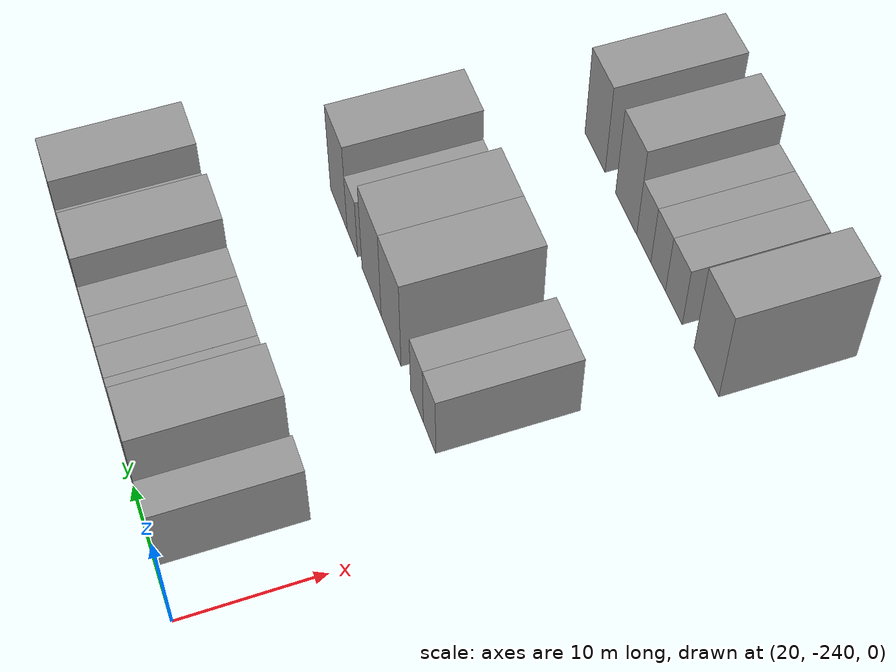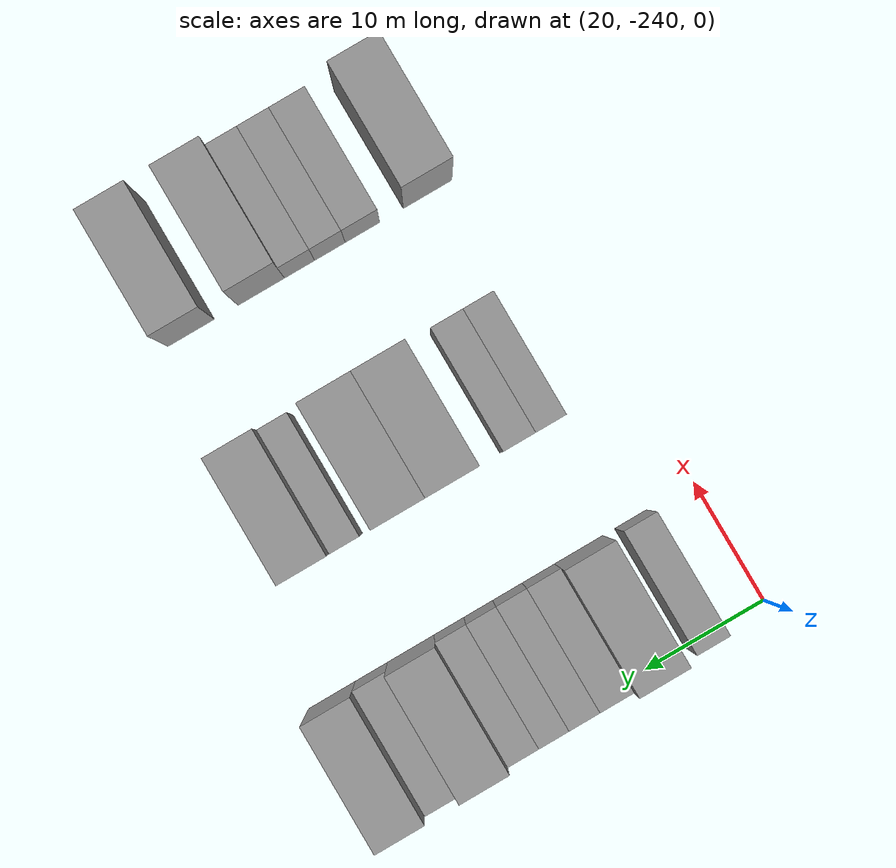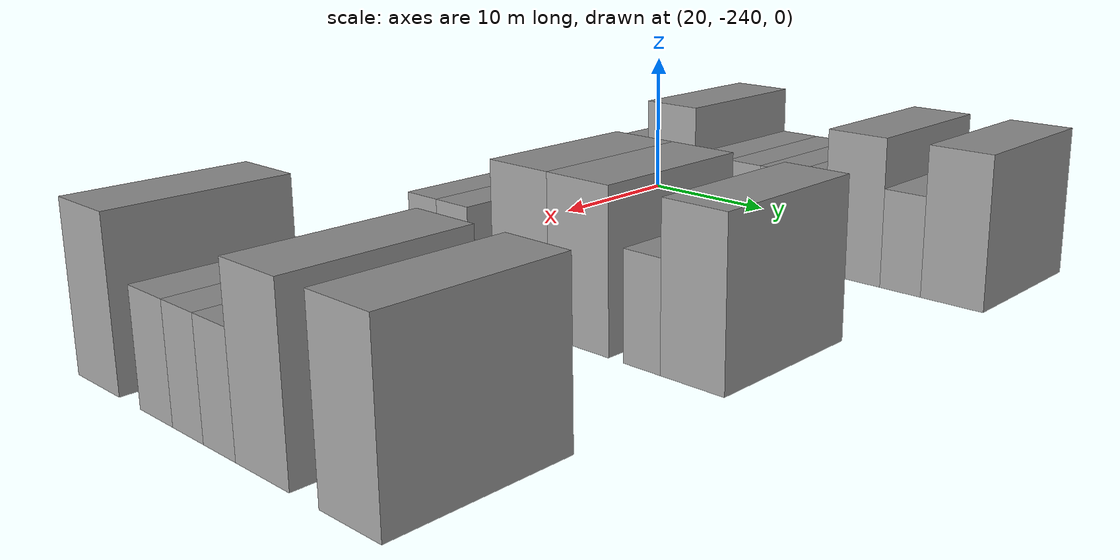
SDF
<sdf version="1.6">
 <world name="default">
  <model name="building_1">
   <static>1</static>
   <pose>25.0000 -234.6481 0 0.000000 0.000000 0.000000</pose>
   <link name="link">
    <pose>0 0 3.00 0 0 0</pose>
    <collision name="collision"><geometry><box><size>10.0000 2.7038 6.0000</size></box></geometry></collision>
    <visual name="visual">
     <cast_shadows>0</cast_shadows>
     <geometry><box><size>10.0000 2.7038 6.0000</size></box></geometry>
     <material>
      <script>
       <uri>model://grey_wall/materials/scripts</uri>
       <uri>model://grey_wall/materials/textures</uri>
       <name>vrc/grey_wall</name>
      </script>
     </material>
    </visual>
   </link>
  </model>
  <model name="building_2">
   <static>1</static>
   <pose>25.0000 -230.2623 0 0.000000 0.000000 0.000000</pose>
   <link name="link">
    <pose>0 0 4.50 0 0 0</pose>
    <collision name="collision"><geometry><box><size>10.0000 4.0678 9.0000</size></box></geometry></collision>
    <visual name="visual">
     <cast_shadows>0</cast_shadows>
     <geometry><box><size>10.0000 4.0678 9.0000</size></box></geometry>
     <material>
      <script>
       <uri>model://grey_wall/materials/scripts</uri>
       <uri>model://grey_wall/materials/textures</uri>
       <name>vrc/grey_wall</name>
      </script>
     </material>
    </visual>
   </link>
  </model>
  <model name="building_3">
   <static>1</static>
   <pose>25.0000 -226.8506 0 0.000000 0.000000 0.000000</pose>
   <link name="link">
    <pose>0 0 3.00 0 0 0</pose>
    <collision name="collision"><geometry><box><size>10.0000 2.7557 6.0000</size></box></geometry></collision>
    <visual name="visual">
     <cast_shadows>0</cast_shadows>
     <geometry><box><size>10.0000 2.7557 6.0000</size></box></geometry>
     <material>
      <script>
       <uri>model://grey_wall/materials/scripts</uri>
       <uri>model://grey_wall/materials/textures</uri>
       <name>vrc/grey_wall</name>
      </script>
     </material>
    </visual>
   </link>
  </model>
  <model name="building_4">
   <static>1</static>
   <pose>25.0000 -224.2279 0 0.000000 0.000000 0.000000</pose>
   <link name="link">
    <pose>0 0 3.00 0 0 0</pose>
    <collision name="collision"><geometry><box><size>10.0000 2.4896 6.0000</size></box></geometry></collision>
    <visual name="visual">
     <cast_shadows>0</cast_shadows>
     <geometry><box><size>10.0000 2.4896 6.0000</size></box></geometry>
     <material>
      <script>
       <uri>model://grey_wall/materials/scripts</uri>
       <uri>model://grey_wall/materials/textures</uri>
       <name>vrc/grey_wall</name>
      </script>
     </material>
    </visual>
   </link>
  </model>
  <model name="building_5">
   <static>1</static>
   <pose>25.0000 -221.7675 0 0.000000 0.000000 0.000000</pose>
   <link name="link">
    <pose>0 0 3.00 0 0 0</pose>
    <collision name="collision"><geometry><box><size>10.0000 2.4312 6.0000</size></box></geometry></collision>
    <visual name="visual">
     <cast_shadows>0</cast_shadows>
     <geometry><box><size>10.0000 2.4312 6.0000</size></box></geometry>
     <material>
      <script>
       <uri>model://grey_wall/materials/scripts</uri>
       <uri>model://grey_wall/materials/textures</uri>
       <name>vrc/grey_wall</name>
      </script>
     </material>
    </visual>
   </link>
  </model>
  <model name="building_6">
   <static>1</static>
   <pose>25.0000 -219.2975 0 0.000000 0.000000 0.000000</pose>
   <link name="link">
    <pose>0 0 3.00 0 0 0</pose>
    <collision name="collision"><geometry><box><size>10.0000 2.5089 6.0000</size></box></geometry></collision>
    <visual name="visual">
     <cast_shadows>0</cast_shadows>
     <geometry><box><size>10.0000 2.5089 6.0000</size></box></geometry>
     <material>
      <script>
       <uri>model://grey_wall/materials/scripts</uri>
       <uri>model://grey_wall/materials/textures</uri>
       <name>vrc/grey_wall</name>
      </script>
     </material>
    </visual>
   </link>
  </model>
  <model name="building_7">
   <static>1</static>
   <pose>25.0000 -216.0618 0 0.000000 0.000000 0.000000</pose>
   <link name="link">
    <pose>0 0 4.50 0 0 0</pose>
    <collision name="collision"><geometry><box><size>10.0000 3.9624 9.0000</size></box></geometry></collision>
    <visual name="visual">
     <cast_shadows>0</cast_shadows>
     <geometry><box><size>10.0000 3.9624 9.0000</size></box></geometry>
     <material>
      <script>
       <uri>model://grey_wall/materials/scripts</uri>
       <uri>model://grey_wall/materials/textures</uri>
       <name>vrc/grey_wall</name>
      </script>
     </material>
    </visual>
   </link>
  </model>
  <model name="building_8">
   <static>1</static>
   <pose>25.0000 -212.7326 0 0.000000 0.000000 0.000000</pose>
   <link name="link">
    <pose>0 0 3.00 0 0 0</pose>
    <collision name="collision"><geometry><box><size>10.0000 2.6959 6.0000</size></box></geometry></collision>
    <visual name="visual">
     <cast_shadows>0</cast_shadows>
     <geometry><box><size>10.0000 2.6959 6.0000</size></box></geometry>
     <material>
      <script>
       <uri>model://grey_wall/materials/scripts</uri>
       <uri>model://grey_wall/materials/textures</uri>
       <name>vrc/grey_wall</name>
      </script>
     </material>
    </visual>
   </link>
  </model>
  <model name="building_9">
   <static>1</static>
   <pose>25.0000 -209.4204 0 0.000000 0.000000 0.000000</pose>
   <link name="link">
    <pose>0 0 4.50 0 0 0</pose>
    <collision name="collision"><geometry><box><size>10.0000 3.9286 9.0000</size></box></geometry></collision>
    <visual name="visual">
     <cast_shadows>0</cast_shadows>
     <geometry><box><size>10.0000 3.9286 9.0000</size></box></geometry>
     <material>
      <script>
       <uri>model://grey_wall/materials/scripts</uri>
       <uri>model://grey_wall/materials/textures</uri>
       <name>vrc/grey_wall</name>
      </script>
     </material>
    </visual>
   </link>
  </model>
  <model name="building_125">
   <static>1</static>
   <pose>44.0000 -232.7569 0 0.000000 0.000000 0.000000</pose>
   <link name="link">
    <pose>0 0 3.00 0 0 0</pose>
    <collision name="collision"><geometry><box><size>10.0000 2.4863 6.0000</size></box></geometry></collision>
    <visual name="visual">
     <cast_shadows>0</cast_shadows>
     <geometry><box><size>10.0000 2.4863 6.0000</size></box></geometry>
     <material>
      <script>
       <uri>model://grey_wall/materials/scripts</uri>
       <uri>model://grey_wall/materials/textures</uri>
       <name>vrc/grey_wall</name>
      </script>
     </material>
    </visual>
   </link>
  </model>
  <model name="building_126">
   <static>1</static>
   <pose>44.0000 -230.1991 0 0.000000 0.000000 0.000000</pose>
   <link name="link">
    <pose>0 0 3.00 0 0 0</pose>
    <collision name="collision"><geometry><box><size>10.0000 2.6292 6.0000</size></box></geometry></collision>
    <visual name="visual">
     <cast_shadows>0</cast_shadows>
     <geometry><box><size>10.0000 2.6292 6.0000</size></box></geometry>
     <material>
      <script>
       <uri>model://grey_wall/materials/scripts</uri>
       <uri>model://grey_wall/materials/textures</uri>
       <name>vrc/grey_wall</name>
      </script>
     </material>
    </visual>
   </link>
  </model>
  <model name="building_127">
   <static>1</static>
   <pose>44.0000 -224.7389 0 0.000000 0.000000 0.000000</pose>
   <link name="link">
    <pose>0 0 4.50 0 0 0</pose>
    <collision name="collision"><geometry><box><size>10.0000 4.2913 9.0000</size></box></geometry></collision>
    <visual name="visual">
     <cast_shadows>0</cast_shadows>
     <geometry><box><size>10.0000 4.2913 9.0000</size></box></geometry>
     <material>
      <script>
       <uri>model://grey_wall/materials/scripts</uri>
       <uri>model://grey_wall/materials/textures</uri>
       <name>vrc/grey_wall</name>
      </script>
     </material>
    </visual>
   </link>
  </model>
  <model name="building_128">
   <static>1</static>
   <pose>44.0000 -220.4427 0 0.000000 0.000000 0.000000</pose>
   <link name="link">
    <pose>0 0 4.50 0 0 0</pose>
    <collision name="collision"><geometry><box><size>10.0000 4.3011 9.0000</size></box></geometry></collision>
    <visual name="visual">
     <cast_shadows>0</cast_shadows>
     <geometry><box><size>10.0000 4.3011 9.0000</size></box></geometry>
     <material>
      <script>
       <uri>model://grey_wall/materials/scripts</uri>
       <uri>model://grey_wall/materials/textures</uri>
       <name>vrc/grey_wall</name>
      </script>
     </material>
    </visual>
   </link>
  </model>
  <model name="building_129">
   <static>1</static>
   <pose>44.0000 -216.0761 0 0.000000 0.000000 0.000000</pose>
   <link name="link">
    <pose>0 0 3.00 0 0 0</pose>
    <collision name="collision"><geometry><box><size>10.0000 2.4320 6.0000</size></box></geometry></collision>
    <visual name="visual">
     <cast_shadows>0</cast_shadows>
     <geometry><box><size>10.0000 2.4320 6.0000</size></box></geometry>
     <material>
      <script>
       <uri>model://grey_wall/materials/scripts</uri>
       <uri>model://grey_wall/materials/textures</uri>
       <name>vrc/grey_wall</name>
      </script>
     </material>
    </visual>
   </link>
  </model>
  <model name="building_130">
   <static>1</static>
   <pose>44.0000 -212.8763 0 0.000000 0.000000 0.000000</pose>
   <link name="link">
    <pose>0 0 4.50 0 0 0</pose>
    <collision name="collision"><geometry><box><size>10.0000 3.9676 9.0000</size></box></geometry></collision>
    <visual name="visual">
     <cast_shadows>0</cast_shadows>
     <geometry><box><size>10.0000 3.9676 9.0000</size></box></geometry>
     <material>
      <script>
       <uri>model://grey_wall/materials/scripts</uri>
       <uri>model://grey_wall/materials/textures</uri>
       <name>vrc/grey_wall</name>
      </script>
     </material>
    </visual>
   </link>
  </model>
  <model name="building_233">
   <static>1</static>
   <pose>63.0000 -233.9388 0 0.000000 0.000000 0.000000</pose>
   <link name="link">
    <pose>0 0 4.50 0 0 0</pose>
    <collision name="collision"><geometry><box><size>10.0000 4.1223 9.0000</size></box></geometry></collision>
    <visual name="visual">
     <cast_shadows>0</cast_shadows>
     <geometry><box><size>10.0000 4.1223 9.0000</size></box></geometry>
     <material>
      <script>
       <uri>model://grey_wall/materials/scripts</uri>
       <uri>model://grey_wall/materials/textures</uri>
       <name>vrc/grey_wall</name>
      </script>
     </material>
    </visual>
   </link>
  </model>
  <model name="building_234">
   <static>1</static>
   <pose>63.0000 -228.4174 0 0.000000 0.000000 0.000000</pose>
   <link name="link">
    <pose>0 0 3.00 0 0 0</pose>
    <collision name="collision"><geometry><box><size>10.0000 2.9205 6.0000</size></box></geometry></collision>
    <visual name="visual">
     <cast_shadows>0</cast_shadows>
     <geometry><box><size>10.0000 2.9205 6.0000</size></box></geometry>
     <material>
      <script>
       <uri>model://grey_wall/materials/scripts</uri>
       <uri>model://grey_wall/materials/textures</uri>
       <name>vrc/grey_wall</name>
      </script>
     </material>
    </visual>
   </link>
  </model>
  <model name="building_235">
   <static>1</static>
   <pose>63.0000 -225.6605 0 0.000000 0.000000 0.000000</pose>
   <link name="link">
    <pose>0 0 3.00 0 0 0</pose>
    <collision name="collision"><geometry><box><size>10.0000 2.5933 6.0000</size></box></geometry></collision>
    <visual name="visual">
     <cast_shadows>0</cast_shadows>
     <geometry><box><size>10.0000 2.5933 6.0000</size></box></geometry>
     <material>
      <script>
       <uri>model://grey_wall/materials/scripts</uri>
       <uri>model://grey_wall/materials/textures</uri>
       <name>vrc/grey_wall</name>
      </script>
     </material>
    </visual>
   </link>
  </model>
  <model name="building_236">
   <static>1</static>
   <pose>63.0000 -223.0857 0 0.000000 0.000000 0.000000</pose>
   <link name="link">
    <pose>0 0 3.00 0 0 0</pose>
    <collision name="collision"><geometry><box><size>10.0000 2.5563 6.0000</size></box></geometry></collision>
    <visual name="visual">
     <cast_shadows>0</cast_shadows>
     <geometry><box><size>10.0000 2.5563 6.0000</size></box></geometry>
     <material>
      <script>
       <uri>model://grey_wall/materials/scripts</uri>
       <uri>model://grey_wall/materials/textures</uri>
       <name>vrc/grey_wall</name>
      </script>
     </material>
    </visual>
   </link>
  </model>
  <model name="building_237">
   <static>1</static>
   <pose>63.0000 -219.8384 0 0.000000 0.000000 0.000000</pose>
   <link name="link">
    <pose>0 0 4.50 0 0 0</pose>
    <collision name="collision"><geometry><box><size>10.0000 3.9382 9.0000</size></box></geometry></collision>
    <visual name="visual">
     <cast_shadows>0</cast_shadows>
     <geometry><box><size>10.0000 3.9382 9.0000</size></box></geometry>
     <material>
      <script>
       <uri>model://grey_wall/materials/scripts</uri>
       <uri>model://grey_wall/materials/textures</uri>
       <name>vrc/grey_wall</name>
      </script>
     </material>
    </visual>
   </link>
  </model>
  <model name="building_238">
   <static>1</static>
   <pose>63.0000 -213.8990 0 0.000000 0.000000 0.000000</pose>
   <link name="link">
    <pose>0 0 4.50 0 0 0</pose>
    <collision name="collision"><geometry><box><size>10.0000 3.9406 9.0000</size></box></geometry></collision>
    <visual name="visual">
     <cast_shadows>0</cast_shadows>
     <geometry><box><size>10.0000 3.9406 9.0000</size></box></geometry>
     <material>
      <script>
       <uri>model://grey_wall/materials/scripts</uri>
       <uri>model://grey_wall/materials/textures</uri>
       <name>vrc/grey_wall</name>
      </script>
     </material>
    </visual>
   </link>
  </model>
 </world>
</sdf>
